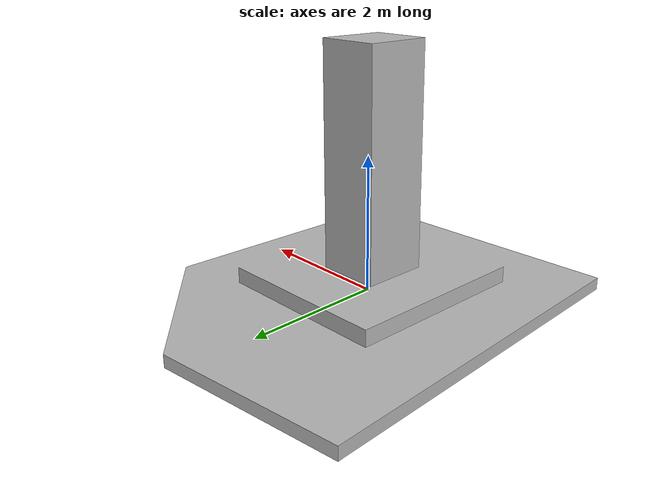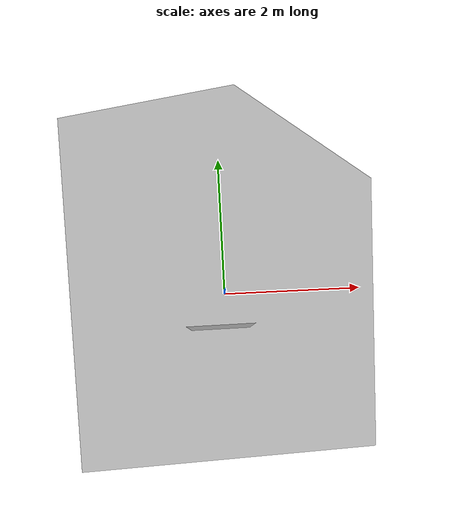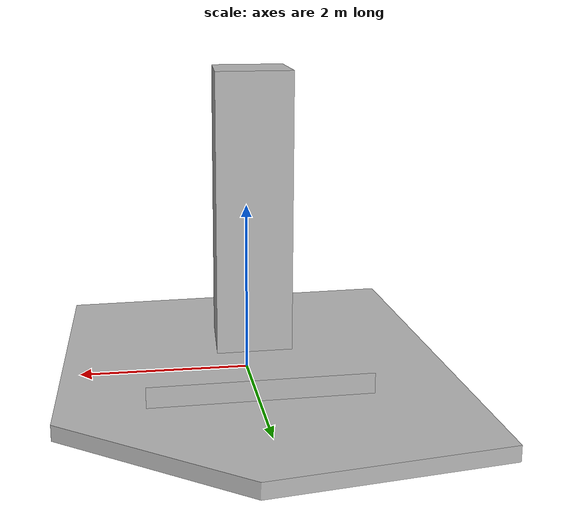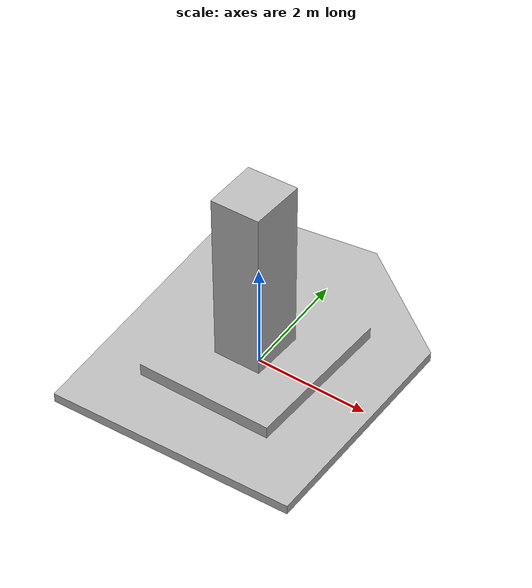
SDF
<?xml version='1.0'?>
<sdf version="1.4">
  <model name="park_jesus">
    <static>true</static>
    <link name="link">
      <collision name="collision">
        <geometry>
          <mesh>
            <uri>model://park_jesus/meshes/park_jesus.dae</uri>
          </mesh>
        </geometry>
      </collision>
      <visual name="visual">
        <geometry>
          <mesh>
            <uri>model://park_jesus/meshes/park_jesus.dae</uri>
          </mesh>
        </geometry>
      </visual>
    </link>
  </model>
</sdf>
